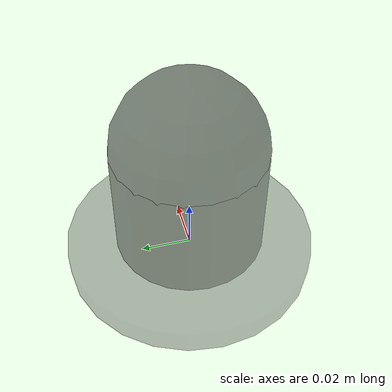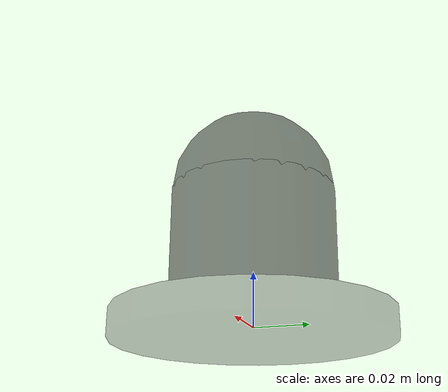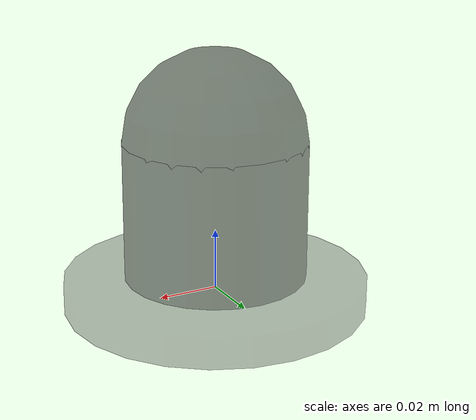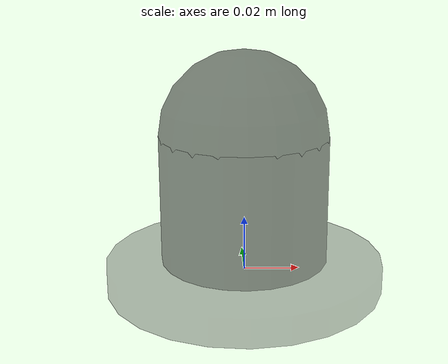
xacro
<robot xmlns:xacro="http://www.ros.org/wiki/xacro" name="robot">
    <!-- 基础链接 -->
    <xacro:macro name="base_link_macro">
    </xacro:macro>

    <!-- 激光传感器 -->
    <xacro:include filename="$(find gazebo_simulator)/urdf/scout_robot/base_link_macro.urdf.xacro"/>
    <xacro:include filename="$(find gazebo_simulator)/urdf/scout_robot/gazebo_ros_ray_sensor.urdf.xacro"/>
    <xacro:include filename="$(find gazebo_simulator)/urdf/scout_robot/laser-robosense-airy-360.urdf.xacro"/>

    <!-- 激光传感器调用 -->
    <xacro:base_link_macro/>
    <xacro:robosense_airy name="robosense_airy_center" parent_link="base_link" frame_id="base_link" xyz="0 0 0.02767" rpy="0 0 0"/>

</robot>

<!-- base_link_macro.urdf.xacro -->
<robot xmlns:xacro="http://www.ros.org/wiki/xacro">
    <!-- Robosense Airy激光雷达 -->
    <xacro:macro name="base_link_macro">
        <link name="base_link">
            <visual>
                <origin xyz="0 0 0" rpy="0 0 0"/>
                <geometry>
                    <cylinder length="0.01" radius="0.05"/>
                </geometry>
                <material name="black">
                    <color rgba="0 0 0 0.3"/>
                </material>
            </visual>
            <collision>
                <origin xyz="0 0 0" rpy="0 0 0"/>
                <geometry>
                    <cylinder length="0.01" radius="0.05"/>
                </geometry>
            </collision>
            <inertial>
                <mass value="0.23"/>
                <inertia ixx="0.008448122" ixy="0.0" ixz="0.0" iyy="0.008448122" iyz="0.0" izz="0.009016"/>
            </inertial>
        </link>
    </xacro:macro>
</robot>

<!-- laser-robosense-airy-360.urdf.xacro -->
<robot xmlns:xacro="http://www.ros.org/wiki/xacro">
    <!-- Robosense Airy激光雷达 -->
    <xacro:macro name="robosense_airy" params="name parent_link frame_id xyz rpy">
        <link name="${name}_link">
            <!-- Robosense Airy激光雷达几何外观-圆柱柱身 -->
            <visual>
                <origin xyz="0 0 0" rpy="0 0 0"/>
                <geometry>
                    <cylinder length="0.04534" radius="0.03"/>
                </geometry>
                <material name="black">
                    <color rgba="0 0 0 0.5"/>
                </material>
            </visual>
            <!-- Robosense Airy激光雷达几何外观-半球头部 -->
            <visual>
                <origin xyz="0 0 0.02267" rpy="0 0 0"/>
                <geometry>
                    <sphere radius="0.03"/>
                </geometry>
                <material name="black">
                    <color rgba="0 0 0 0.5"/>
                </material>
            </visual>
        </link>
        <!-- Robosense Airy激光雷达连接信息 -->
        <joint name="${name}_joint" type="fixed">
            <parent link="${parent_link}"/>
            <child link="${name}_link"/>
            <origin xyz="${xyz}" rpy="${rpy}"/>
        </joint>
        <!-- Robosense Airy激光雷达Gazebo仿真配置 -->
        <gazebo reference="${name}_link">
            <!-- Gazebo仿真中配置参数 -->
            <!-- 摩擦系数 刚度系数 阻尼系数 -->
            <mu1>20.0</mu1>
            <mu2>20.0</mu2>
            <kp>100000000</kp>
            <kd>1.0</kd>
            <!-- 传感器插件配置 -->
            <sensor type="ray" name="${name}_robosense_airy">
                <pose>0 0 0 0 0 0</pose>
                <always_on>true</always_on>
                <visualize>false</visualize>
                <update_rate>10.0</update_rate>
                <ray>
                    <scan>
                        <horizontal>
                            <samples>360</samples>
                            <resolution>1</resolution>
                            <min_angle>-3.1415926</min_angle>
                            <max_angle>3.1415926</max_angle>
                        </horizontal>
                        <vertical>
                            <samples>96</samples>
                            <resolution>1</resolution>
                            <min_angle>0.0</min_angle>
                            <max_angle>1.5707963</max_angle>
                        </vertical>
                    </scan>
                    <range>
                        <min>0.10</min>
                        <max>30.0</max>
                        <resolution>0.01</resolution>
                    </range>
                    <noise>
                        <type>gaussian</type>
                        <mean>0.0</mean>
                        <stddev>0.015</stddev>
                    </noise>
                </ray>
                <plugin name="${name}_controller" filename="libgazebo_ros_velodyne_laser.so">
                    <ros>
                        <namespace>/</namespace>
                        <remapping>~/out:=/${name}_points/scan</remapping>
                    </ros>
                    <frame_name>${frame_id}</frame_name>
                    <min_range>0.10</min_range>
                    <max_range>30.0</max_range>
                    <gaussian_noise>0.00</gaussian_noise>
                    <organize_cloud>true</organize_cloud>    <!-- 是否生成组织好的点云（height = vertical samples） -->
                    <min_intensity>0.015</min_intensity>      <!-- 强度阈值，低于则可能被丢弃/裁剪 -->
                </plugin>
            </sensor>
        </gazebo>
    </xacro:macro>
</robot>
